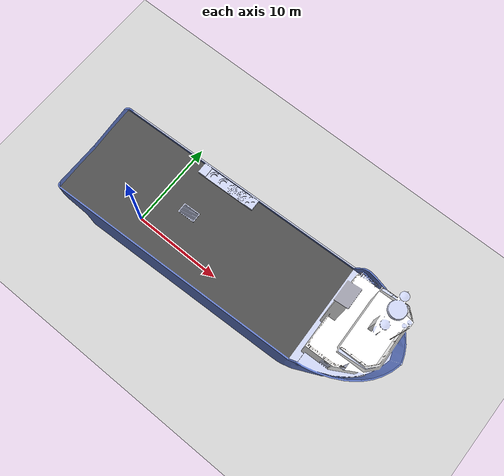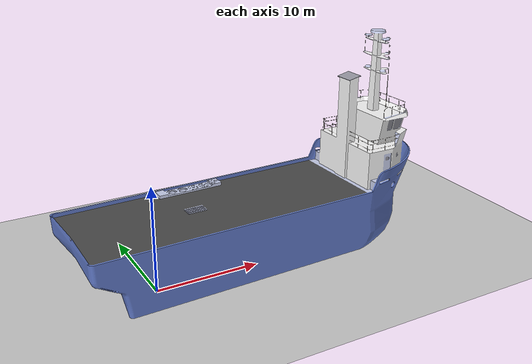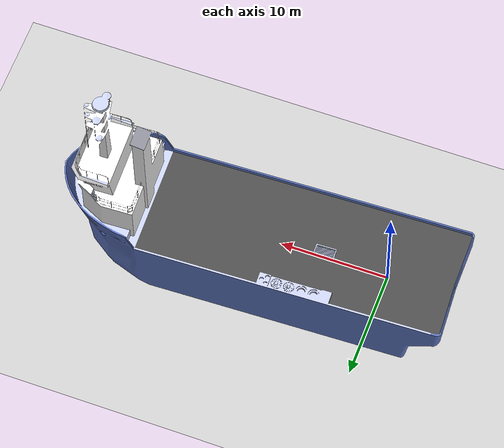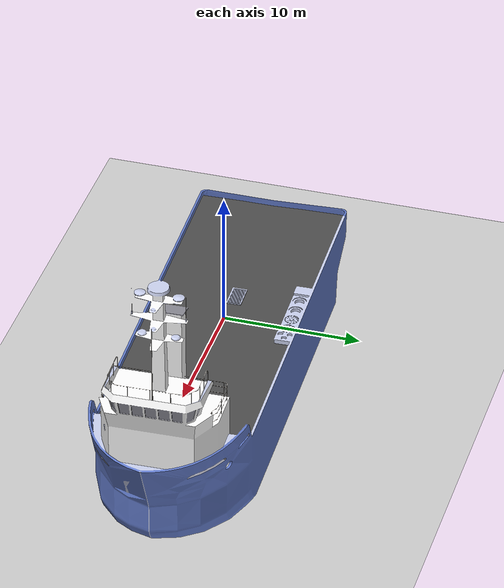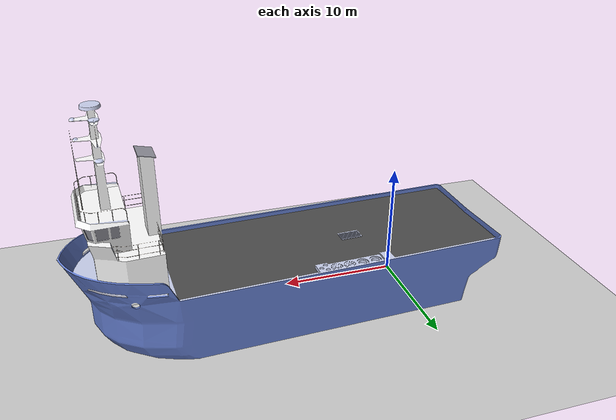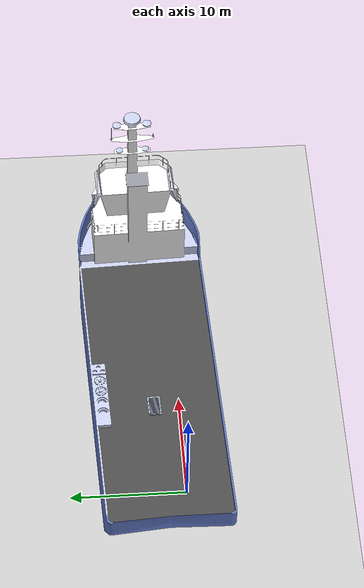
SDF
<sdf version="1.6">
 <world name="default">
  <light name="sun" type="directional">
   <pose>0 0 10 0 -0 0</pose>
   <diffuse>0.8 0.8 0.8 1</diffuse>
   <specular>0.2 0.2 0.2 1</specular>
   <attenuation>
    <range>1000</range>
    <constant>0.9</constant>
    <linear>0.01</linear>
    <quadratic>0.001</quadratic>
   </attenuation>
   <direction>-0.5 0.1 -0.9</direction>
  </light>
  <model name="ground_plane">
   <static>1</static>
   <link name="link">
    <collision name="collision">
     <geometry><plane><normal>0 0 1</normal><size>100 100</size></plane></geometry>
     <surface><friction><ode><mu>100</mu><mu2>50</mu2></ode></friction></surface>
    </collision>
    <visual name="visual">
     <cast_shadows>0</cast_shadows>
     <geometry><plane><normal>0 0 1</normal><size>100 100</size></plane></geometry>
     <material>
      <script><uri>file://media/materials/scripts/gazebo.material</uri><name>Gazebo/Grey</name></script>
     </material>
    </visual>
   </link>
  </model>
  <gravity>0 0 -9.8</gravity>
  <magnetic_field>6e-06 2.3e-05 -4.2e-05</magnetic_field>
  <atmosphere type="adiabatic"/>
  <physics name="default_physics" default="0" type="ode">
   <max_step_size>0.001</max_step_size>
   <real_time_factor>1</real_time_factor>
   <real_time_update_rate>1000</real_time_update_rate>
  </physics>
  <scene><ambient>0.4 0.4 0.4 1</ambient><background>0.7 0.7 0.7 1</background><shadows>1</shadows></scene>
  <spherical_coordinates>
   <surface_model>EARTH_WGS84</surface_model>
   <latitude_deg>0</latitude_deg>
   <longitude_deg>0</longitude_deg>
   <elevation>0</elevation>
   <heading_deg>0</heading_deg>
  </spherical_coordinates>
  <model name="ship">
   <link name="ship_base_link">
    <inertial>
     <mass>95.78</mass>
     <inertia><ixx>57.28</ixx><ixy>0</ixy><ixz>-0.23</ixz><iyy>57.28</iyy><iyz>0</iyz><izz>6.09</izz></inertia>
    </inertial>
    <collision name="ship_base_link_fixed_joint_lump__base_link_collision_collision">
     <pose>0 0 5 0 -0 0</pose>
     <geometry>
      <mesh>
       <scale>0.0025 0.0025 0.0025</scale>
       <uri>/home/william/Underwater/underwater_ws/src/underwater_sim/models/meshes/ship/hull.dae</uri>
      </mesh>
     </geometry>
    </collision>
    <visual name="ship_base_link_visual">
     <geometry>
      <mesh>
       <scale>0.0025 0.0025 0.0025</scale>
       <uri>/home/william/Underwater/underwater_ws/src/underwater_sim/models/meshes/ship/testShip.dae</uri>
      </mesh>
     </geometry>
    </visual>
   </link>
   <pose>11.5449 2.44165 2.61883 -5.7e-05 0.013539 0.034769</pose>
  </model>
 </world>
</sdf>
